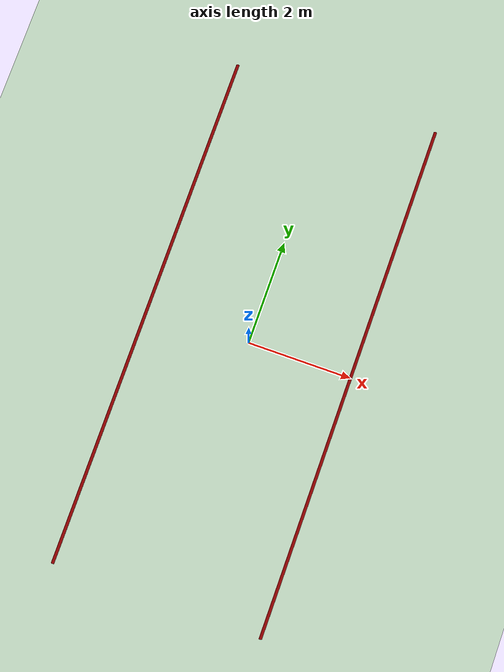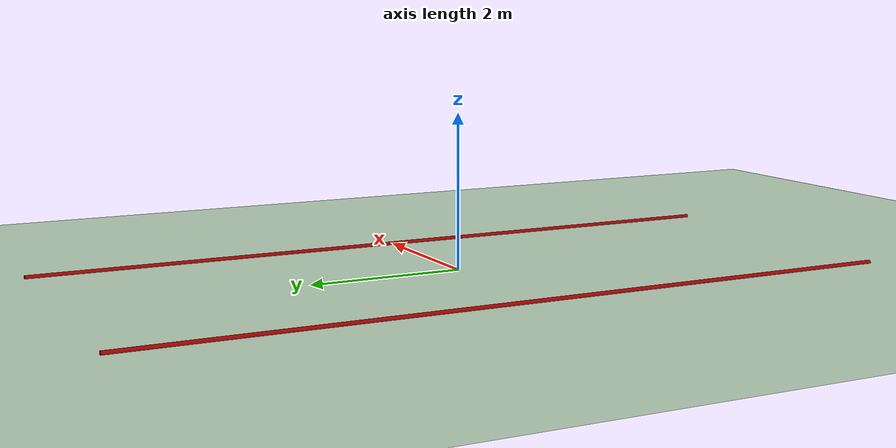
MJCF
<mujoco model="mutiagent_world">
  <compiler angle="degree" coordinate="local" inertiafromgeom="true"/>
  <option integrator="RK4" timestep="0.003" solver="PGS" iterations="1000"/>
  <default>
    <joint armature="1" damping="1" limited="true"/>
  </default>
  <asset>
    <texture builtin="gradient" height="100" rgb1="1 1 1" rgb2="0 0 0" type="skybox" width="100"/>
    <texture builtin="flat" height="1278" mark="cross" markrgb="1 1 1" name="texgeom" random="0.01" rgb1=".1 .1 .1" rgb2=".3 .3 0.3" type="cube" width="127"/>
    <texture builtin="checker" height="100" name="texplane" rgb1=".1 .1 .1" rgb2=".3 .3 0.3" type="2d" width="100"/>
    <material name="MatPlane" reflectance="0.5" shininess="1" specular="1" texrepeat="60 60" texture="texplane"/>
    <material name="geom" texture="texgeom" texuniform="true"/>
  </asset>
  <worldbody>
    <light cutoff="100" diffuse="1 1 1" dir="-0 0 -1.3" directional="true" exponent="1" pos="0 0 1.3" specular=".1 .1 .1"/>
    <geom contype="1" conaffinity="1" friction="1 .1 .1" condim="3" material="MatPlane" name="floor" pos="0 0 0" rgba="0.8 0.9 0.8 1" size="20 20 0.125" type="plane"/>
    <geom fromto="2 -5 0  2 +5 0" name="rightgoal" rgba="0.6 0.0 0.0 1" size=".03" type="cylinder"/>
    <geom fromto="-2 -5 0  -2 +5 0" name="leftgoal" rgba="0.6 0.0 0.0 1" size=".03" type="cylinder"/>
  </worldbody>
</mujoco>
